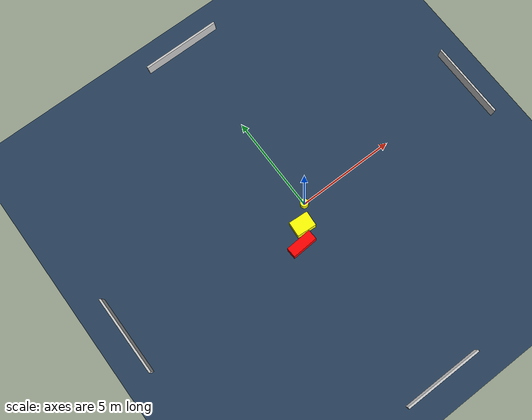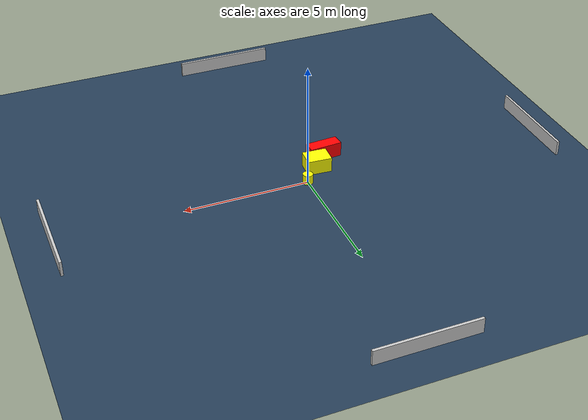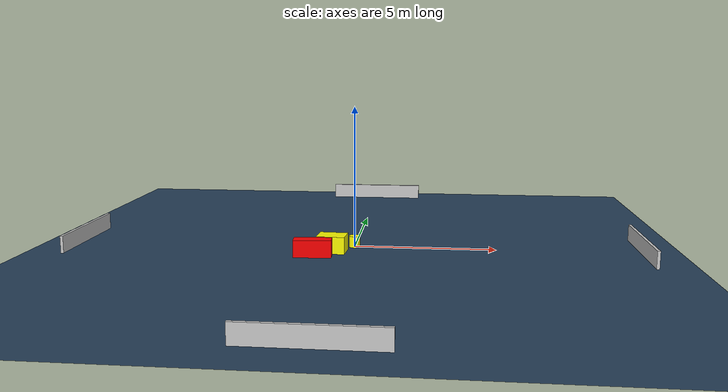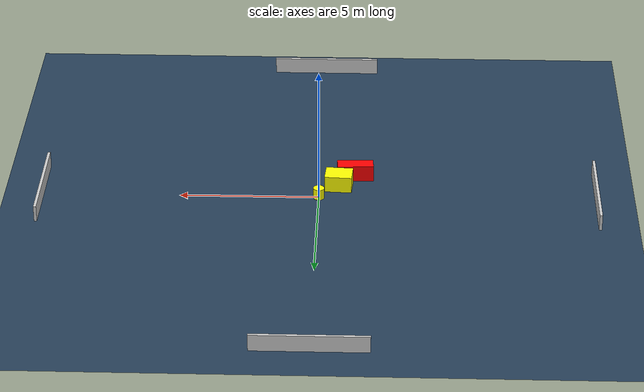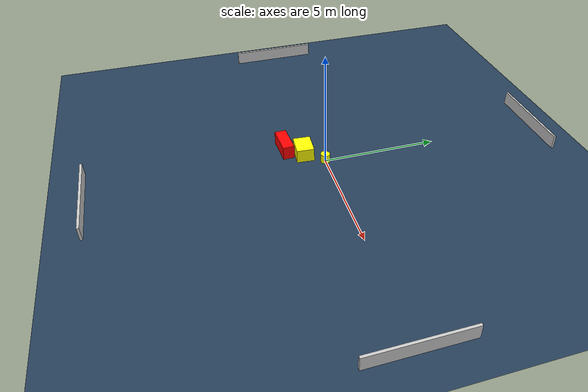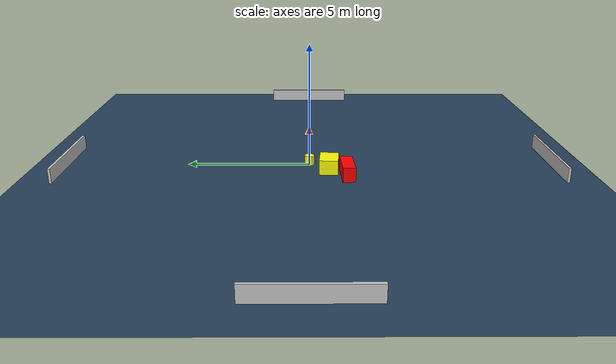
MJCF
<?xml version="1.0" ?>
<mujoco model="generated_environment">
  <option timestep="0.01" integrator="RK4" cone="elliptic"/>
  <default>
    <geom density="1"/>
  </default>
  <asset>
    <texture builtin="gradient" height="3072" name="skybox" rgb1="0.3 0.5 0.7" rgb2="0 0 0" type="skybox" width="512"/>
    <texture builtin="checker" height="300" name="groundplane" rgb1="0.2 0.3 0.4" rgb2="0.1 0.2 0.3" type="2d" width="300"/>
    <material name="groundplane" reflectance="0.2" texrepeat="5 5" texture="groundplane"/>
  </asset>
  <worldbody>
    <light dir="0 0 -1" directional="true" pos="0 0 1.5"/>
    <geom condim="3" friction="0.5 0.005 0.001" material="groundplane" name="floor" pos="0 0 0" size="0 0 0.05" type="plane"/>
    <body name="walls">
      <geom name="wall_1" condim="4" pos="-10.0 0.0 0.3" rgba="0.800000011920929 0.800000011920929 0.800000011920929 1.0" size="0.05 2.0 0.3" type="box"/>
      <geom name="wall_2" condim="4" pos="10.0 0.0 0.3" rgba="0.800000011920929 0.800000011920929 0.800000011920929 1.0" size="0.05 2.0 0.3" type="box"/>
      <geom name="wall_3" condim="4" pos="0.0 -10.0 0.3" rgba="0.800000011920929 0.800000011920929 0.800000011920929 1.0" size="2.0 0.05 0.3" type="box"/>
      <geom name="wall_4" condim="4" pos="0.0 10.0 0.3" rgba="0.800000011920929 0.800000011920929 0.800000011920929 1.0" size="2.0 0.05 0.3" type="box"/>
    </body>
    <body name="robot">
      <joint name="joint_x" type="slide" pos="0 0 0" axis="1 0 0"/>
      <joint name="joint_y" type="slide" pos="0 0 0" axis="0 1 0"/>
      <geom name="robot" type="cylinder" pos="0.0 0.0 0.2" size="0.2 0.2 0.0" mass="5.0" friction="1.0 0.005 0.0001" condim="4" rgba="1.0 1.0 0.0 1.0"/>
    </body>
    <body name="obstacle_1_movable">
      <geom name="obstacle_1_movable" condim="4" pos="-0.703345279445482 -0.7824898843551555 0.3" euler="0 0 266.2056792571996" friction="0.0 0.005 0.001" rgba="1.0 1.0 0.0 1.0" size="0.3779585109885066 0.49009138290753435 0.3" type="box" mass="0.1"/>
      <joint type="free"/>
    </body>
    <body name="obstacle_2_static">
      <geom name="obstacle_2_static" condim="4" pos="-1.2895689070758245 -1.4918425218981983 0.3" euler="0 0 93.41195665992285" friction="0.0 0.005 0.001" rgba="1.0 0.0 0.0 1.0" size="0.25202649597967924 0.6540085950105547 0.3" type="box"/>
    </body>
  </worldbody>
  <actuator>
    <motor name="actuator_x" joint="joint_x" gear="1" ctrlrange="-1 1"/>
    <motor name="actuator_y" joint="joint_y" gear="1" ctrlrange="-1 1"/>
  </actuator>
</mujoco>
